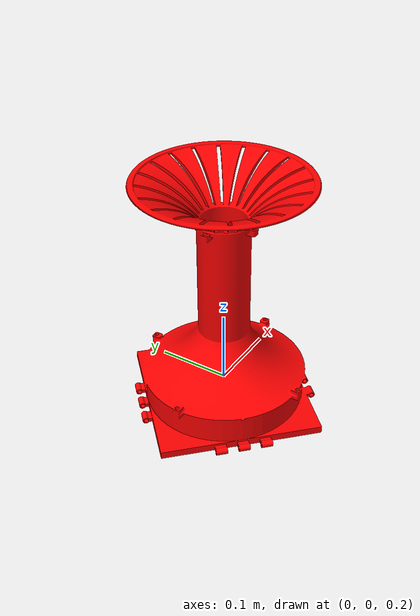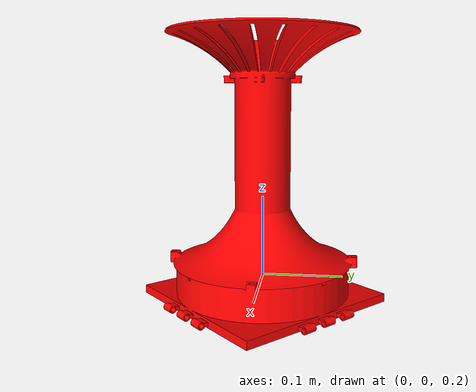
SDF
<?xml version='1.0'?>
<sdf version='1.5'>
  <model name='Smart_Probe'>
    <link name='body'>
      <pose frame=''>-0 -0 0.5 3.14 0 0</pose>
      <inertial>
        <mass>0.2</mass>
        <pose frame=''>0 0 0 0 -0 0</pose>
        <inertia>
          <ixx>0.01</ixx>
          <ixy>0</ixy>
          <ixz>0</ixz>
          <iyy>0.01</iyy>
          <iyz>0</iyz>
          <izz>0.01</izz>
        </inertia>
      </inertial>
      <self_collide>0</self_collide>
      <kinematic>0</kinematic>
      <gravity>1</gravity>
      <visual name='visual'>
        <geometry>
          <mesh>
            <scale>0.05 0.05 0.05</scale>
            <uri>model://rotors_description/meshes/smart-probe.dae</uri>
          </mesh>
        </geometry>
        <pose frame=''>0 0 0 0 -0 0</pose>
        <cast_shadows>1</cast_shadows>
        <transparency>0</transparency>
        <material>
          <shader type='pixel'>
            <normal_map>__default__</normal_map>
          </shader>
          <ambient>1 0 0 0</ambient>
        </material>
      </visual>
      <collision name='collision'>
        <laser_retro>0</laser_retro>
        <max_contacts>10</max_contacts>
        <pose frame=''>0 0 0 0 -0 0</pose>
        <geometry>
          <mesh>
            <uri>/home/nsf/src/Firmware/Tools/sitl_gazebo/models/rotors_description/meshes/smart-probe.dae</uri>
            <scale>0.05 0.05 0.05</scale>
          </mesh>
        </geometry>
        <surface>
          <friction>
            <ode>
              <mu>1</mu>
              <mu2>1</mu2>
              <fdir1>0 0 0</fdir1>
              <slip1>0</slip1>
              <slip2>0</slip2>
            </ode>
          </friction>
          <bounce>
            <restitution_coefficient>0</restitution_coefficient>
            <threshold>1e+06</threshold>
          </bounce>
          <contact>
            <collide_without_contact>0</collide_without_contact>
            <collide_without_contact_bitmask>1</collide_without_contact_bitmask>
            <collide_bitmask>1</collide_bitmask>
            <ode>
              <soft_cfm>0</soft_cfm>
              <soft_erp>0.2</soft_erp>
              <kp>1e+13</kp>
              <kd>1</kd>
              <max_vel>0.01</max_vel>
              <min_depth>0</min_depth>
            </ode>
            <bullet>
              <split_impulse>1</split_impulse>
              <split_impulse_penetration_threshold>-0.01</split_impulse_penetration_threshold>
              <soft_cfm>0</soft_cfm>
              <soft_erp>0.2</soft_erp>
              <kp>1e+13</kp>
              <kd>1</kd>
            </bullet>
          </contact>
        </surface>
      </collision>
    </link>
    <static>0</static>
    <allow_auto_disable>1</allow_auto_disable>
  </model>
</sdf>
